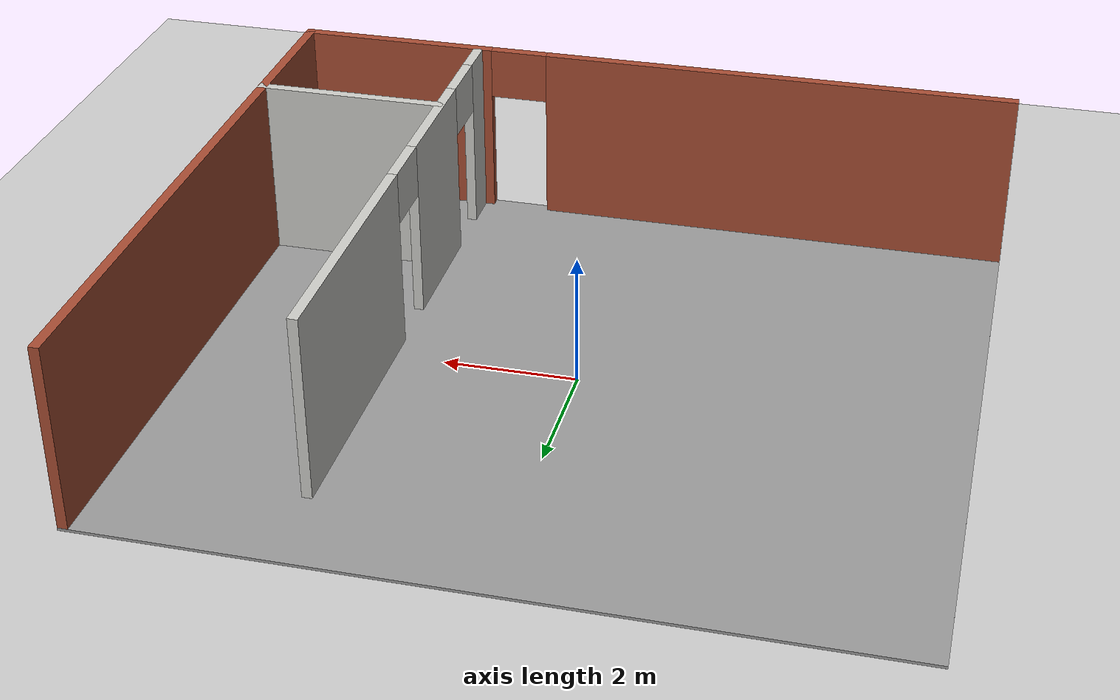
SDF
<sdf version="1.6">
 <world name="default">
  <model name="ground_plane">
   <static>1</static>
   <link name="link">
    <collision name="collision">
     <geometry><plane><normal>0 0 1</normal><size>100 100</size></plane></geometry>
     <surface>
      <contact><collide_bitmask>65535</collide_bitmask></contact>
      <friction><ode><mu>100</mu><mu2>50</mu2></ode></friction>
     </surface>
    </collision>
    <visual name="visual">
     <cast_shadows>0</cast_shadows>
     <geometry><plane><normal>0 0 1</normal><size>100 100</size></plane></geometry>
     <material>
      <script><uri>file://media/materials/scripts/gazebo.material</uri><name>Gazebo/Grey</name></script>
     </material>
    </visual>
   </link>
  </model>
  <model name="house">
   <link name="Wall_41">
    <pose>2.79944 -0.621 0 0 -0 1.5708</pose>
    <visual name="Wall_41_Visual_0">
     <pose>-3.9395 0 1.4 0 -0 0</pose>
     <geometry><box><size>0.621 0.15 2.8</size></box></geometry>
     <material>
      <script><uri>file://media/materials/scripts/gazebo.material</uri><name>Gazebo/CeilingTiled</name></script>
      <ambient>1 1 1 1</ambient>
      <shader type="pixel"/>
     </material>
     <meta><layer>0</layer></meta>
    </visual>
    <visual name="Wall_41_Visual_1">
     <pose>-1.71426 0 1.4 0 -0 0</pose>
     <geometry><box><size>2.02948 0.15 2.8</size></box></geometry>
     <material>
      <script><uri>file://media/materials/scripts/gazebo.material</uri><name>Gazebo/CeilingTiled</name></script>
      <ambient>1 1 1 1</ambient>
      <shader type="pixel"/>
     </material>
     <meta><layer>0</layer></meta>
    </visual>
    <visual name="Wall_41_Visual_2">
     <pose>2.22524 0 1.4 0 -0 0</pose>
     <geometry><box><size>4.04952 0.15 2.8</size></box></geometry>
     <material>
      <script><uri>file://media/materials/scripts/gazebo.material</uri><name>Gazebo/CeilingTiled</name></script>
      <ambient>1 1 1 1</ambient>
      <shader type="pixel"/>
     </material>
     <meta><layer>0</layer></meta>
    </visual>
    <visual name="Wall_41_Visual_5">
     <pose>-3.179 0 2.4 0 -0 0</pose>
     <geometry><box><size>0.9 0.15 0.8</size></box></geometry>
     <material>
      <script><uri>file://media/materials/scripts/gazebo.material</uri><name>Gazebo/CeilingTiled</name></script>
      <ambient>1 1 1 1</ambient>
      <shader type="pixel"/>
     </material>
     <meta><layer>0</layer></meta>
    </visual>
    <visual name="Wall_41_Visual_6">
     <pose>-0.249524 0 2.4 0 -0 0</pose>
     <geometry><box><size>0.9 0.15 0.8</size></box></geometry>
     <material>
      <script><uri>file://media/materials/scripts/gazebo.material</uri><name>Gazebo/CeilingTiled</name></script>
      <ambient>1 1 1 1</ambient>
      <shader type="pixel"/>
     </material>
     <meta><layer>0</layer></meta>
    </visual>
    <collision name="Wall_41_Collision_0">
     <pose>-3.9395 0 1.4 0 -0 0</pose>
     <geometry><box><size>0.621 0.15 2.8</size></box></geometry>
     <surface>
      <friction>
       <ode><mu>1</mu><mu2>1</mu2><fdir1>0 0 0</fdir1><slip1>0</slip1><slip2>0</slip2></ode>
       <torsional>
        <coefficient>1</coefficient>
        <patch_radius>0</patch_radius>
        <surface_radius>0</surface_radius>
        <use_patch_radius>1</use_patch_radius>
        <ode><slip>0</slip></ode>
       </torsional>
      </friction>
      <bounce><restitution_coefficient>0</restitution_coefficient><threshold>1e+06</threshold></bounce>
      <contact>
       <collide_without_contact>0</collide_without_contact>
       <collide_without_contact_bitmask>1</collide_without_contact_bitmask>
       <collide_bitmask>1</collide_bitmask>
       <ode>
        <soft_cfm>0</soft_cfm>
        <soft_erp>0.2</soft_erp>
        <kp>1e+13</kp>
        <kd>1</kd>
        <max_vel>0.01</max_vel>
        <min_depth>0</min_depth>
       </ode>
       <bullet>
        <split_impulse>1</split_impulse>
        <split_impulse_penetration_threshold>-0.01</split_impulse_penetration_threshold>
        <soft_cfm>0</soft_cfm>
        <soft_erp>0.2</soft_erp>
        <kp>1e+13</kp>
        <kd>1</kd>
       </bullet>
      </contact>
     </surface>
    </collision>
    <collision name="Wall_41_Collision_1">
     <pose>-1.71426 0 1.4 0 -0 0</pose>
     <geometry><box><size>2.02948 0.15 2.8</size></box></geometry>
     <surface>
      <friction>
       <ode><mu>1</mu><mu2>1</mu2><fdir1>0 0 0</fdir1><slip1>0</slip1><slip2>0</slip2></ode>
       <torsional>
        <coefficient>1</coefficient>
        <patch_radius>0</patch_radius>
        <surface_radius>0</surface_radius>
        <use_patch_radius>1</use_patch_radius>
        <ode><slip>0</slip></ode>
       </torsional>
      </friction>
      <bounce><restitution_coefficient>0</restitution_coefficient><threshold>1e+06</threshold></bounce>
      <contact>
       <collide_without_contact>0</collide_without_contact>
       <collide_without_contact_bitmask>1</collide_without_contact_bitmask>
       <collide_bitmask>1</collide_bitmask>
       <ode>
        <soft_cfm>0</soft_cfm>
        <soft_erp>0.2</soft_erp>
        <kp>1e+13</kp>
        <kd>1</kd>
        <max_vel>0.01</max_vel>
        <min_depth>0</min_depth>
       </ode>
       <bullet>
        <split_impulse>1</split_impulse>
        <split_impulse_penetration_threshold>-0.01</split_impulse_penetration_threshold>
        <soft_cfm>0</soft_cfm>
        <soft_erp>0.2</soft_erp>
        <kp>1e+13</kp>
        <kd>1</kd>
       </bullet>
      </contact>
     </surface>
    </collision>
    <collision name="Wall_41_Collision_2">
     <pose>2.22524 0 1.4 0 -0 0</pose>
     <geometry><box><size>4.04952 0.15 2.8</size></box></geometry>
     <surface>
      <friction>
       <ode><mu>1</mu><mu2>1</mu2><fdir1>0 0 0</fdir1><slip1>0</slip1><slip2>0</slip2></ode>
       <torsional>
        <coefficient>1</coefficient>
        <patch_radius>0</patch_radius>
        <surface_radius>0</surface_radius>
        <use_patch_radius>1</use_patch_radius>
        <ode><slip>0</slip></ode>
       </torsional>
      </friction>
      <bounce><restitution_coefficient>0</restitution_coefficient><threshold>1e+06</threshold></bounce>
      <contact>
       <collide_without_contact>0</collide_without_contact>
       <collide_without_contact_bitmask>1</collide_without_contact_bitmask>
       <collide_bitmask>1</collide_bitmask>
       <ode>
        <soft_cfm>0</soft_cfm>
        <soft_erp>0.2</soft_erp>
        <kp>1e+13</kp>
        <kd>1</kd>
        <max_vel>0.01</max_vel>
        <min_depth>0</min_depth>
       </ode>
       <bullet>
        <split_impulse>1</split_impulse>
        <split_impulse_penetration_threshold>-0.01</split_impulse_penetration_threshold>
        <soft_cfm>0</soft_cfm>
        <soft_erp>0.2</soft_erp>
        <kp>1e+13</kp>
        <kd>1</kd>
       </bullet>
      </contact>
     </surface>
    </collision>
    <collision name="Wall_41_Collision_5">
     <pose>-3.179 0 2.4 0 -0 0</pose>
     <geometry><box><size>0.9 0.15 0.8</size></box></geometry>
     <surface>
      <friction>
       <ode><mu>1</mu><mu2>1</mu2><fdir1>0 0 0</fdir1><slip1>0</slip1><slip2>0</slip2></ode>
       <torsional>
        <coefficient>1</coefficient>
        <patch_radius>0</patch_radius>
        <surface_radius>0</surface_radius>
        <use_patch_radius>1</use_patch_radius>
        <ode><slip>0</slip></ode>
       </torsional>
      </friction>
      <bounce><restitution_coefficient>0</restitution_coefficient><threshold>1e+06</threshold></bounce>
      <contact>
       <collide_without_contact>0</collide_without_contact>
       <collide_without_contact_bitmask>1</collide_without_contact_bitmask>
       <collide_bitmask>1</collide_bitmask>
       <ode>
        <soft_cfm>0</soft_cfm>
        <soft_erp>0.2</soft_erp>
        <kp>1e+13</kp>
        <kd>1</kd>
        <max_vel>0.01</max_vel>
        <min_depth>0</min_depth>
       </ode>
       <bullet>
        <split_impulse>1</split_impulse>
        <split_impulse_penetration_threshold>-0.01</split_impulse_penetration_threshold>
        <soft_cfm>0</soft_cfm>
        <soft_erp>0.2</soft_erp>
        <kp>1e+13</kp>
        <kd>1</kd>
       </bullet>
      </contact>
     </surface>
    </collision>
    <collision name="Wall_41_Collision_6">
     <pose>-0.249524 0 2.4 0 -0 0</pose>
     <geometry><box><size>0.9 0.15 0.8</size></box></geometry>
     <surface>
      <friction>
       <ode><mu>1</mu><mu2>1</mu2><fdir1>0 0 0</fdir1><slip1>0</slip1><slip2>0</slip2></ode>
       <torsional>
        <coefficient>1</coefficient>
        <patch_radius>0</patch_radius>
        <surface_radius>0</surface_radius>
        <use_patch_radius>1</use_patch_radius>
        <ode><slip>0</slip></ode>
       </torsional>
      </friction>
      <bounce><restitution_coefficient>0</restitution_coefficient><threshold>1e+06</threshold></bounce>
      <contact>
       <collide_without_contact>0</collide_without_contact>
       <collide_without_contact_bitmask>1</collide_without_contact_bitmask>
       <collide_bitmask>1</collide_bitmask>
       <ode>
        <soft_cfm>0</soft_cfm>
        <soft_erp>0.2</soft_erp>
        <kp>1e+13</kp>
        <kd>1</kd>
        <max_vel>0.01</max_vel>
        <min_depth>0</min_depth>
       </ode>
       <bullet>
        <split_impulse>1</split_impulse>
        <split_impulse_penetration_threshold>-0.01</split_impulse_penetration_threshold>
        <soft_cfm>0</soft_cfm>
        <soft_erp>0.2</soft_erp>
        <kp>1e+13</kp>
        <kd>1</kd>
       </bullet>
      </contact>
     </surface>
    </collision>
   </link>
   <link name="Wall_49">
    <pose>4.23556 -2.77325 0 0 -0 3.14159</pose>
    <inertial>
     <mass>1</mass>
     <inertia><ixx>1</ixx><ixy>0</ixy><ixz>0</ixz><iyy>1</iyy><iyz>0</iyz><izz>1</izz></inertia>
    </inertial>
    <visual name="Wall_49_Visual">
     <pose>0 0 1.4 0 -0 0</pose>
     <geometry><box><size>2.96 0.15 2.8</size></box></geometry>
     <material>
      <script><uri>file://media/materials/scripts/gazebo.material</uri><name>Gazebo/CeilingTiled</name></script>
      <ambient>1 1 1 1</ambient>
      <shader type="pixel"><normal_map>__default__</normal_map></shader>
      <diffuse>1 1 1 1</diffuse>
      <specular>0 0 0 1</specular>
      <emissive>0 0 0 1</emissive>
     </material>
     <meta><layer>0</layer></meta>
    </visual>
    <collision name="Wall_49_Collision">
     <pose>0 0 1.4 0 -0 0</pose>
     <geometry><box><size>2.97 0.15 2.8</size></box></geometry>
     <surface>
      <friction>
       <ode><mu>1</mu><mu2>1</mu2><fdir1>0 0 0</fdir1><slip1>0</slip1><slip2>0</slip2></ode>
       <torsional>
        <coefficient>1</coefficient>
        <patch_radius>0</patch_radius>
        <surface_radius>0</surface_radius>
        <use_patch_radius>1</use_patch_radius>
        <ode><slip>0</slip></ode>
       </torsional>
      </friction>
      <bounce><restitution_coefficient>0</restitution_coefficient><threshold>1e+06</threshold></bounce>
      <contact>
       <collide_without_contact>0</collide_without_contact>
       <collide_without_contact_bitmask>1</collide_without_contact_bitmask>
       <collide_bitmask>1</collide_bitmask>
       <ode>
        <soft_cfm>0</soft_cfm>
        <soft_erp>0.2</soft_erp>
        <kp>1e+13</kp>
        <kd>1</kd>
        <max_vel>0.01</max_vel>
        <min_depth>0</min_depth>
       </ode>
       <bullet>
        <split_impulse>1</split_impulse>
        <split_impulse_penetration_threshold>-0.01</split_impulse_penetration_threshold>
        <soft_cfm>0</soft_cfm>
        <soft_erp>0.2</soft_erp>
        <kp>1e+13</kp>
        <kd>1</kd>
       </bullet>
      </contact>
     </surface>
    </collision>
   </link>
   <link name="Wall_5">
    <pose>5.64944 0 0 0 0 -1.5708</pose>
    <visual name="Wall_5_Visual">
     <pose>0 0 1.4 0 -0 0</pose>
     <geometry><box><size>10 0.15 2.8</size></box></geometry>
     <material>
      <script><uri>file://media/materials/scripts/gazebo.material</uri><name>Gazebo/Bricks</name></script>
      <ambient>1 1 1 1</ambient>
      <shader type="pixel"/>
     </material>
     <meta><layer>0</layer></meta>
    </visual>
    <collision name="Wall_5_Collision">
     <pose>0 0 1.4 0 -0 0</pose>
     <geometry><box><size>10 0.15 2.8</size></box></geometry>
     <surface>
      <friction>
       <ode><mu>1</mu><mu2>1</mu2><fdir1>0 0 0</fdir1><slip1>0</slip1><slip2>0</slip2></ode>
       <torsional>
        <coefficient>1</coefficient>
        <patch_radius>0</patch_radius>
        <surface_radius>0</surface_radius>
        <use_patch_radius>1</use_patch_radius>
        <ode><slip>0</slip></ode>
       </torsional>
      </friction>
      <bounce><restitution_coefficient>0</restitution_coefficient><threshold>1e+06</threshold></bounce>
      <contact>
       <collide_without_contact>0</collide_without_contact>
       <collide_without_contact_bitmask>1</collide_without_contact_bitmask>
       <collide_bitmask>1</collide_bitmask>
       <ode>
        <soft_cfm>0</soft_cfm>
        <soft_erp>0.2</soft_erp>
        <kp>1e+13</kp>
        <kd>1</kd>
        <max_vel>0.01</max_vel>
        <min_depth>0</min_depth>
       </ode>
       <bullet>
        <split_impulse>1</split_impulse>
        <split_impulse_penetration_threshold>-0.01</split_impulse_penetration_threshold>
        <soft_cfm>0</soft_cfm>
        <soft_erp>0.2</soft_erp>
        <kp>1e+13</kp>
        <kd>1</kd>
       </bullet>
      </contact>
     </surface>
    </collision>
   </link>
   <link name="Wall_8">
    <pose>-0.000556 -4.925 0 0 -0 0</pose>
    <visual name="Wall_8_Visual_0">
     <pose>-2.02255 0 1.4 0 -0 0</pose>
     <geometry><box><size>7.4049 0.15 2.8</size></box></geometry>
     <material>
      <script><uri>file://media/materials/scripts/gazebo.material</uri><name>Gazebo/Bricks</name></script>
      <ambient>1 1 1 1</ambient>
      <shader type="pixel"/>
     </material>
     <meta><layer>0</layer></meta>
    </visual>
    <visual name="Wall_8_Visual_3">
     <pose>2.1299 0 2.4 0 -0 0</pose>
     <geometry><box><size>0.9 0.15 0.8</size></box></geometry>
     <material>
      <script><uri>file://media/materials/scripts/gazebo.material</uri><name>Gazebo/Bricks</name></script>
      <ambient>1 1 1 1</ambient>
      <shader type="pixel"/>
     </material>
     <meta><layer>0</layer></meta>
    </visual>
    <visual name="Wall_8_Visual_1">
     <pose>4.15245 0 1.4 0 -0 0</pose>
     <geometry><box><size>3.1451 0.15 2.8</size></box></geometry>
     <material>
      <script><uri>file://media/materials/scripts/gazebo.material</uri><name>Gazebo/Bricks</name></script>
      <ambient>1 1 1 1</ambient>
      <shader type="pixel"/>
     </material>
     <meta><layer>0</layer></meta>
    </visual>
    <collision name="Wall_8_Collision_0">
     <pose>-2.02255 0 1.4 0 -0 0</pose>
     <geometry><box><size>7.4049 0.15 2.8</size></box></geometry>
     <surface>
      <friction>
       <ode><mu>1</mu><mu2>1</mu2><fdir1>0 0 0</fdir1><slip1>0</slip1><slip2>0</slip2></ode>
       <torsional>
        <coefficient>1</coefficient>
        <patch_radius>0</patch_radius>
        <surface_radius>0</surface_radius>
        <use_patch_radius>1</use_patch_radius>
        <ode><slip>0</slip></ode>
       </torsional>
      </friction>
      <bounce><restitution_coefficient>0</restitution_coefficient><threshold>1e+06</threshold></bounce>
      <contact>
       <collide_without_contact>0</collide_without_contact>
       <collide_without_contact_bitmask>1</collide_without_contact_bitmask>
       <collide_bitmask>1</collide_bitmask>
       <ode>
        <soft_cfm>0</soft_cfm>
        <soft_erp>0.2</soft_erp>
        <kp>1e+13</kp>
        <kd>1</kd>
        <max_vel>0.01</max_vel>
        <min_depth>0</min_depth>
       </ode>
       <bullet>
        <split_impulse>1</split_impulse>
        <split_impulse_penetration_threshold>-0.01</split_impulse_penetration_threshold>
        <soft_cfm>0</soft_cfm>
        <soft_erp>0.2</soft_erp>
        <kp>1e+13</kp>
        <kd>1</kd>
       </bullet>
      </contact>
     </surface>
    </collision>
    <collision name="Wall_8_Collision_1">
     <pose>4.15245 0 1.4 0 -0 0</pose>
     <geometry><box><size>3.1451 0.15 2.8</size></box></geometry>
     <surface>
      <friction>
       <ode><mu>1</mu><mu2>1</mu2><fdir1>0 0 0</fdir1><slip1>0</slip1><slip2>0</slip2></ode>
       <torsional>
        <coefficient>1</coefficient>
        <patch_radius>0</patch_radius>
        <surface_radius>0</surface_radius>
        <use_patch_radius>1</use_patch_radius>
        <ode><slip>0</slip></ode>
       </torsional>
      </friction>
      <bounce><restitution_coefficient>0</restitution_coefficient><threshold>1e+06</threshold></bounce>
      <contact>
       <collide_without_contact>0</collide_without_contact>
       <collide_without_contact_bitmask>1</collide_without_contact_bitmask>
       <collide_bitmask>1</collide_bitmask>
       <ode>
        <soft_cfm>0</soft_cfm>
        <soft_erp>0.2</soft_erp>
        <kp>1e+13</kp>
        <kd>1</kd>
        <max_vel>0.01</max_vel>
        <min_depth>0</min_depth>
       </ode>
       <bullet>
        <split_impulse>1</split_impulse>
        <split_impulse_penetration_threshold>-0.01</split_impulse_penetration_threshold>
        <soft_cfm>0</soft_cfm>
        <soft_erp>0.2</soft_erp>
        <kp>1e+13</kp>
        <kd>1</kd>
       </bullet>
      </contact>
     </surface>
    </collision>
    <collision name="Wall_8_Collision_3">
     <pose>2.1299 0 2.4 0 -0 0</pose>
     <geometry><box><size>0.9 0.15 0.8</size></box></geometry>
     <surface>
      <friction>
       <ode><mu>1</mu><mu2>1</mu2><fdir1>0 0 0</fdir1><slip1>0</slip1><slip2>0</slip2></ode>
       <torsional>
        <coefficient>1</coefficient>
        <patch_radius>0</patch_radius>
        <surface_radius>0</surface_radius>
        <use_patch_radius>1</use_patch_radius>
        <ode><slip>0</slip></ode>
       </torsional>
      </friction>
      <bounce><restitution_coefficient>0</restitution_coefficient><threshold>1e+06</threshold></bounce>
      <contact>
       <collide_without_contact>0</collide_without_contact>
       <collide_without_contact_bitmask>1</collide_without_contact_bitmask>
       <collide_bitmask>1</collide_bitmask>
       <ode>
        <soft_cfm>0</soft_cfm>
        <soft_erp>0.2</soft_erp>
        <kp>1e+13</kp>
        <kd>1</kd>
        <max_vel>0.01</max_vel>
        <min_depth>0</min_depth>
       </ode>
       <bullet>
        <split_impulse>1</split_impulse>
        <split_impulse_penetration_threshold>-0.01</split_impulse_penetration_threshold>
        <soft_cfm>0</soft_cfm>
        <soft_erp>0.2</soft_erp>
        <kp>1e+13</kp>
        <kd>1</kd>
       </bullet>
      </contact>
     </surface>
    </collision>
   </link>
   <link name="link_0">
    <inertial>
     <mass>1</mass>
     <inertia>
      <ixx>0.166667</ixx>
      <ixy>0</ixy>
      <ixz>0</ixz>
      <iyy>0.166667</iyy>
      <iyz>0</iyz>
      <izz>0.166667</izz>
     </inertia>
    </inertial>
    <visual name="visual">
     <geometry><box><size>11.45 10 0.05</size></box></geometry>
     <material>
      <lighting>1</lighting>
      <script><uri>file://media/materials/scripts/gazebo.material</uri><name>Gazebo/Grey</name></script>
      <shader type="pixel"><normal_map>__default__</normal_map></shader>
      <ambient>0.3 0.3 0.3 1</ambient>
      <diffuse>0.7 0.7 0.7 1</diffuse>
      <specular>0.01 0.01 0.01 1</specular>
      <emissive>0 0 0 1</emissive>
     </material>
    </visual>
    <collision name="collision">
     <geometry><box><size>11.45 10 0.05</size></box></geometry>
     <surface>
      <friction>
       <ode><mu>1</mu><mu2>1</mu2><fdir1>0 0 0</fdir1><slip1>0</slip1><slip2>0</slip2></ode>
       <torsional>
        <coefficient>1</coefficient>
        <patch_radius>0</patch_radius>
        <surface_radius>0</surface_radius>
        <use_patch_radius>1</use_patch_radius>
        <ode><slip>0</slip></ode>
       </torsional>
      </friction>
      <bounce><restitution_coefficient>0</restitution_coefficient><threshold>1e+06</threshold></bounce>
      <contact>
       <collide_without_contact>0</collide_without_contact>
       <collide_without_contact_bitmask>1</collide_without_contact_bitmask>
       <collide_bitmask>1</collide_bitmask>
       <ode>
        <soft_cfm>0</soft_cfm>
        <soft_erp>0.2</soft_erp>
        <kp>1e+13</kp>
        <kd>1</kd>
        <max_vel>0.01</max_vel>
        <min_depth>0</min_depth>
       </ode>
       <bullet>
        <split_impulse>1</split_impulse>
        <split_impulse_penetration_threshold>-0.01</split_impulse_penetration_threshold>
        <soft_cfm>0</soft_cfm>
        <soft_erp>0.2</soft_erp>
        <kp>1e+13</kp>
        <kd>1</kd>
       </bullet>
      </contact>
     </surface>
    </collision>
   </link>
   <static>1</static>
  </model>
  <model name="my_ball">
   <link name="link_0">
    <inertial>
     <mass>1</mass>
     <inertia><ixx>0.1</ixx><ixy>0</ixy><ixz>0</ixz><iyy>0.1</iyy><iyz>0</iyz><izz>0.1</izz></inertia>
    </inertial>
    <visual name="visual">
     <geometry><sphere><radius>0.1</radius></sphere></geometry>
     <material>
      <lighting>1</lighting>
      <script><uri>file://media/materials/scripts/gazebo.material</uri><name>Gazebo/Grey</name></script>
      <shader type="pixel"><normal_map>__default__</normal_map></shader>
      <ambient>1 1 1 1</ambient>
      <diffuse>1 1 1 1</diffuse>
      <specular>1 1 1 1</specular>
      <emissive>1 1 1 1</emissive>
     </material>
    </visual>
    <collision name="collision">
     <geometry><sphere><radius>0.1</radius></sphere></geometry>
     <surface>
      <friction>
       <ode><mu>1</mu><mu2>1</mu2><fdir1>0 0 0</fdir1><slip1>0</slip1><slip2>0</slip2></ode>
       <torsional>
        <coefficient>1</coefficient>
        <patch_radius>0</patch_radius>
        <surface_radius>0</surface_radius>
        <use_patch_radius>1</use_patch_radius>
        <ode><slip>0</slip></ode>
       </torsional>
      </friction>
      <bounce><restitution_coefficient>0</restitution_coefficient><threshold>1e+06</threshold></bounce>
      <contact>
       <collide_without_contact>0</collide_without_contact>
       <collide_without_contact_bitmask>1</collide_without_contact_bitmask>
       <collide_bitmask>1</collide_bitmask>
       <ode>
        <soft_cfm>0</soft_cfm>
        <soft_erp>0.2</soft_erp>
        <kp>1e+13</kp>
        <kd>1</kd>
        <max_vel>0.01</max_vel>
        <min_depth>0</min_depth>
       </ode>
       <bullet>
        <split_impulse>1</split_impulse>
        <split_impulse_penetration_threshold>-0.01</split_impulse_penetration_threshold>
        <soft_cfm>0</soft_cfm>
        <soft_erp>0.2</soft_erp>
        <kp>1e+13</kp>
        <kd>1</kd>
       </bullet>
      </contact>
     </surface>
    </collision>
   </link>
   <static>0</static>
   <pose>0.318591 -5.49363 0.1 0 -0 0</pose>
  </model>
 </world>
</sdf>
